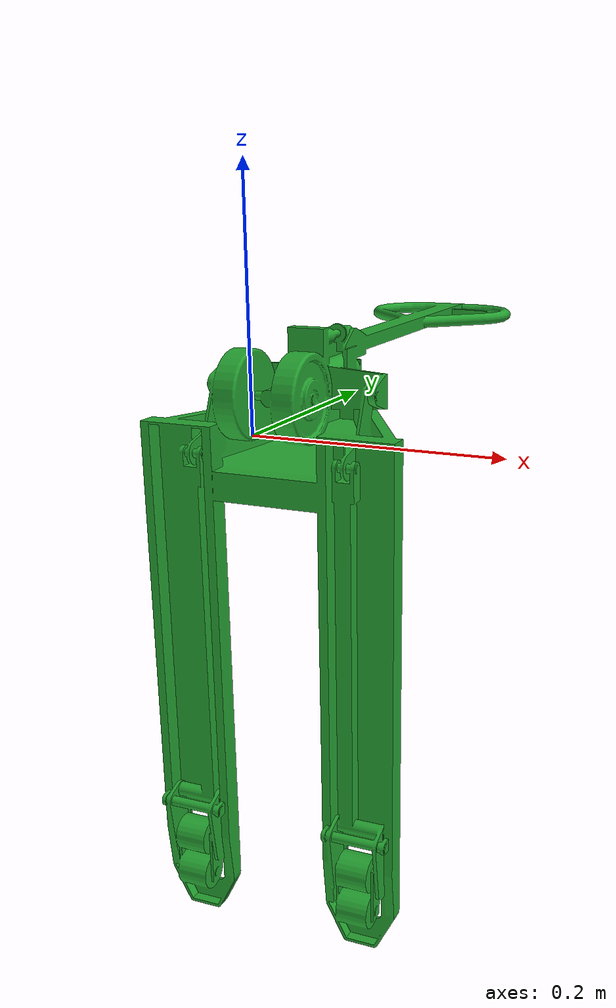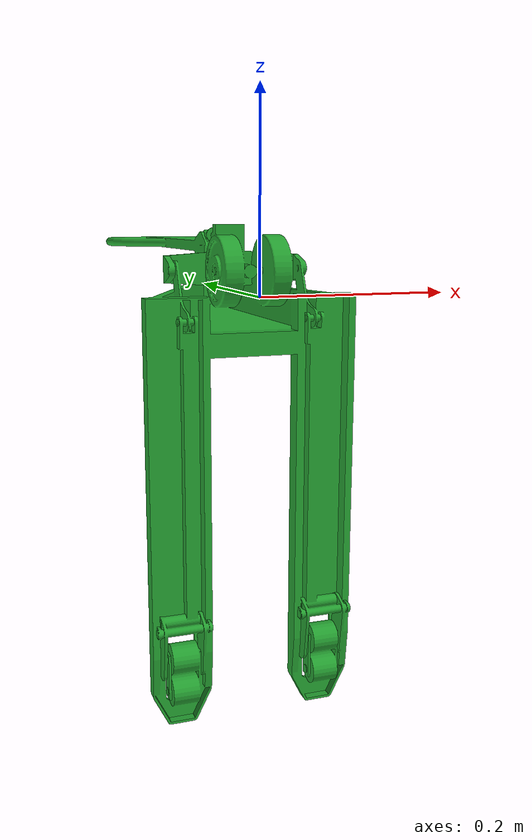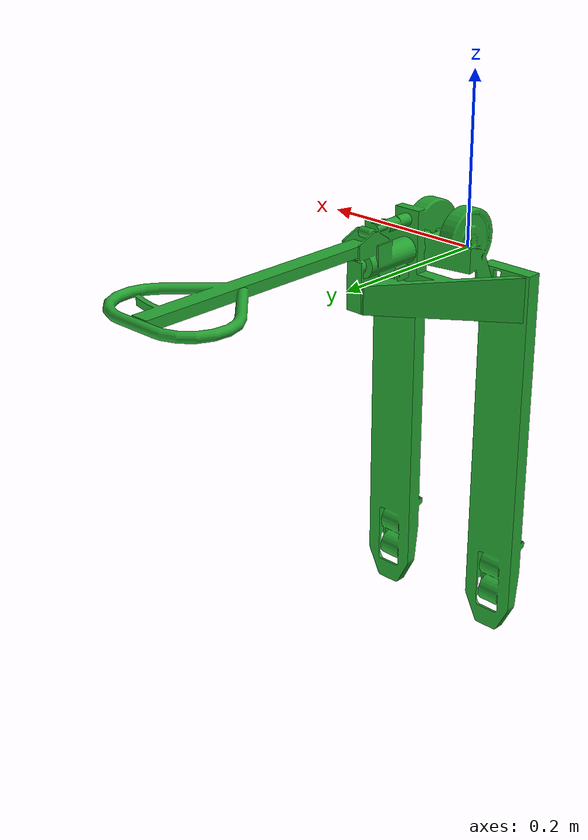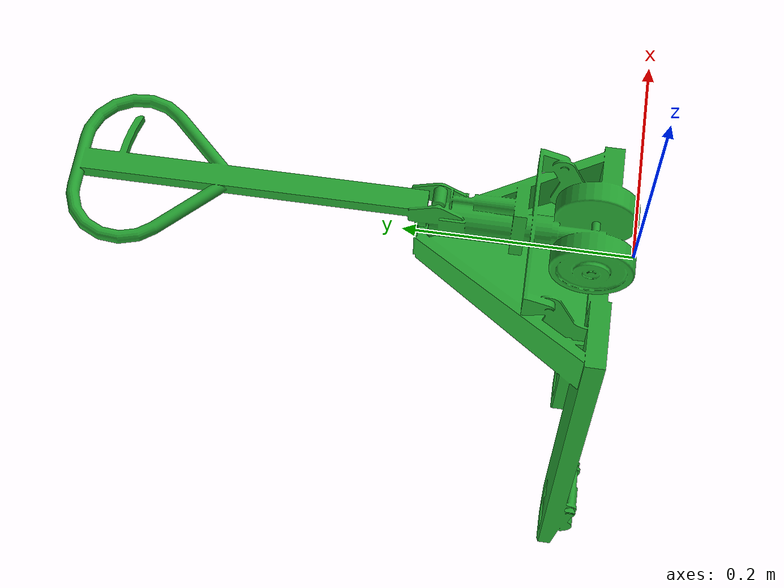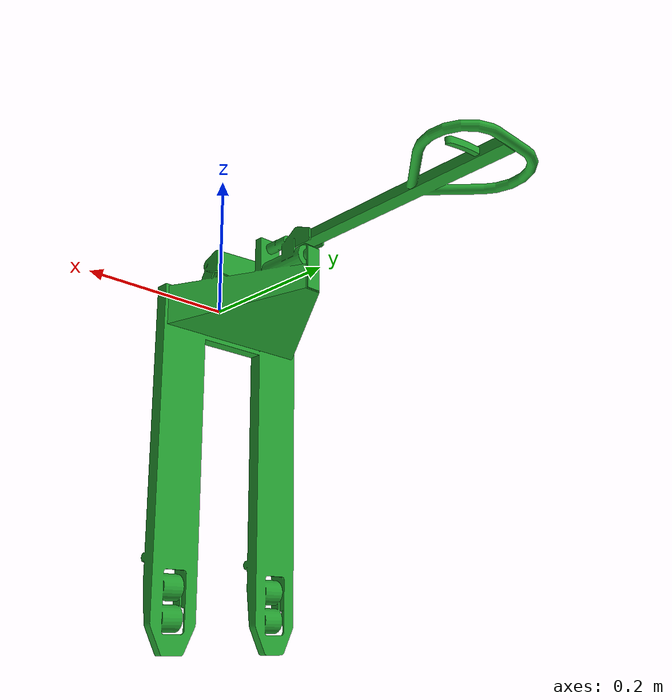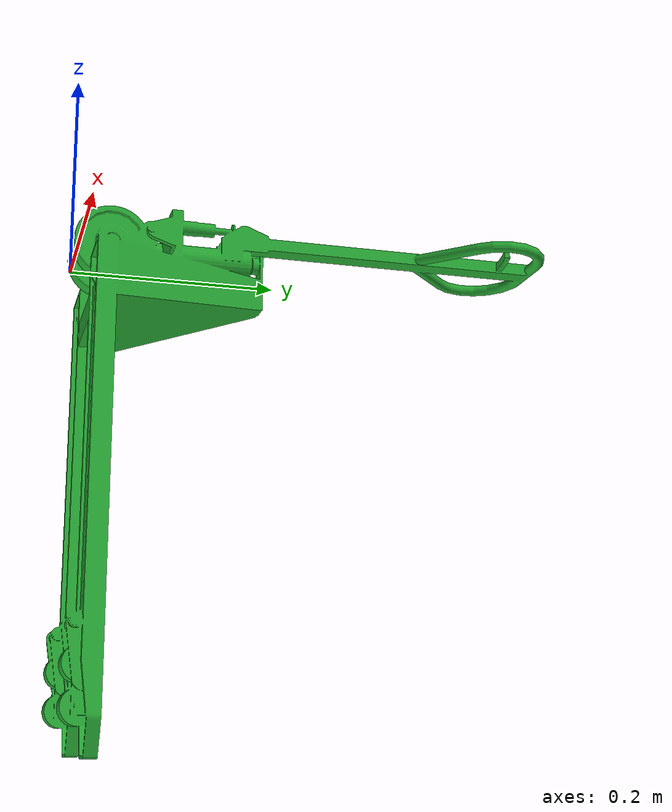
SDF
<?xml version="1.0" ?>
<sdf version="1.6">
  <model name="palletjack1">
    <pose>0 0 0.15 0 0 0</pose>
    <static>1</static>
    <link name="link">
      <inertial>
        <mass>2</mass>
        <inertia>
          <ixx>0.041666667</ixx>
          <ixy>0</ixy>
          <ixz>0</ixz>
          <iyy>0.056666667</iyy>
          <iyz>0</iyz>
          <izz>0.068333333</izz>
        </inertia>
      </inertial>
      <collision name="collision">
        <geometry>
          <box>
            <size>0.5 0.4 0.3</size>
          </box>
        </geometry>
        <surface>
          <friction>
            <ode>
              <mu>1.0</mu>
              <mu2>1.0</mu2>
            </ode>
          </friction>
          <contact>
            <ode>
              <kp>10000000.0</kp>
              <kd>1.0</kd>
              <min_depth>0.001</min_depth>
              <max_vel>0.1</max_vel>
            </ode>
          </contact>
        </surface>
      </collision>
      <visual name="visual">
        <pose>0 0 -0.15 0 0 0</pose>
        <geometry>
          <mesh>
            <uri>/home/computing/catkin_ws/src/gazebo_sensors_tutorial/models/palletjack1/meshes/pallet_jack_green.stl</uri>
            <scale>0.0004 0.0004 0.0004</scale>

          </mesh>
        </geometry>
        <material>
          <script>
            <uri>file://media/materials/scripts/gazebo.material</uri>
            <name>Gazebo/Green </name>
          </script>
        </material>
      </visual>
    </link>
  </model>
</sdf>
